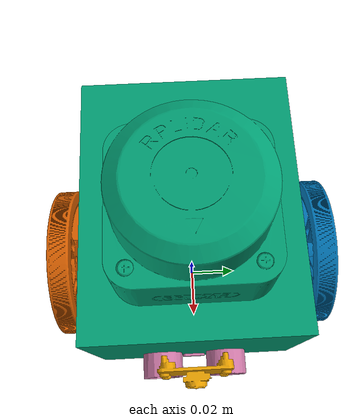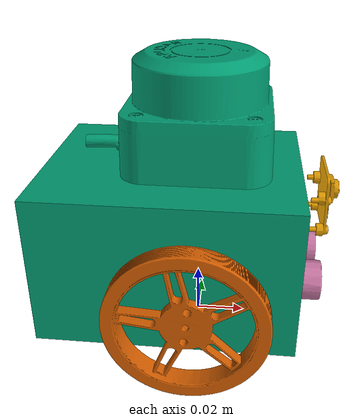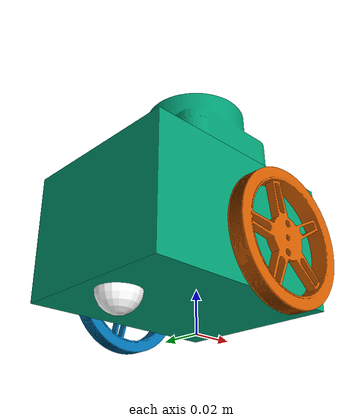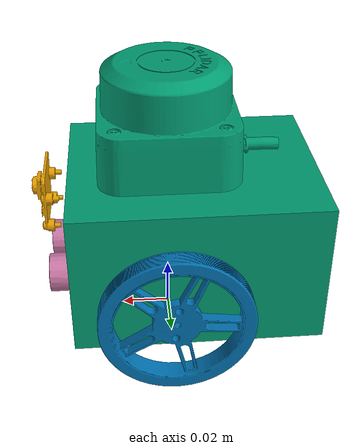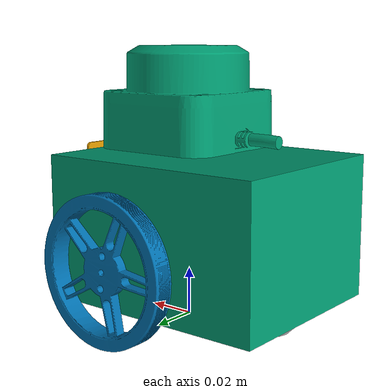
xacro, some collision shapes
<?xml version="1.0"?>
<robot name="pinky" xmlns:xacro="http://www.ros.org/wiki/xacro">

    <xacro:property name="wheel_separation" value="0.1"/>
    <xacro:property name="wheel_diameter" value="0.06"/>
    <xacro:include filename="inertial_macros.xacro"/>

    <xacro:property name="chassis_length" value="0.10"/>
    <xacro:property name="chassis_width" value="0.08"/>
    <xacro:property name="chassis_height" value="0.06"/>
    <xacro:property name="chassis_mass" value="1.0"/>
    <xacro:property name="wheel_radius" value="0.03"/>
    <xacro:property name="wheel_thickness" value="0.014"/>
    <xacro:property name="wheel_mass" value="0.05"/>
    <xacro:property name="caster_wheel_radius" value="0.01"/>
    <xacro:property name="caster_wheel_mass" value="0.7"/>

    <material name="white">
        <color rgba="1 1 1 1" />
    </material>

    <link name="base_footprint"/>

    <joint name="base_link_fixed_joint" type="fixed">
        <parent link="base_footprint"/>
        <child link="base_link"/>
        <origin xyz="0 0 ${wheel_diameter/2}" rpy="0 0 0"/>
    </joint>

	<link name="base_link"/>

     <joint name="chassis_fixed_joint" type="fixed">
        <parent link="base_link"/>
        <child link="chassis"/>
        <origin xyz="0 0 0" rpy="0 0 0"/>
    </joint>

	<link name="chassis">
		<visual>
            <origin xyz="0 0 0" rpy="0 0 0"/>
            <geometry>
                <mesh filename="package://pinky_description/meshes/visual/base_link.dae" scale="1 1 1"/>
            </geometry>
        </visual>
        <collision>
            <origin xyz="-0.01 0 0.01" rpy="0 0 0"/>
            <geometry>
                <box size="${chassis_length} ${chassis_width} ${chassis_height}"/>
            </geometry>
        </collision>
        <xacro:inertial_box mass="${chassis_mass}" x="${chassis_length}" y="${chassis_width}" z="${chassis_height}">
            <origin xyz="-0.01 0 0.01" rpy="0 0 0"/>
        </xacro:inertial_box>
	</link>

    <joint name="caster_fixed_joint" type="fixed">
        <parent link="chassis"/>
        <child link="caster"/>
        <origin xyz="-0.044 0 -0.02" rpy="0 0 0"/>
    </joint>

	<link name="caster">
      <visual>
            <origin xyz="0 0 0" rpy="0 0 0"/>
            <geometry>
                <sphere radius="${caster_wheel_radius}"/>
            </geometry>
            <material name="white"/>
        </visual>
        <collision>
            <origin xyz="0 0 0" rpy="0 0 0"/>
            <geometry>
                <sphere radius="${caster_wheel_radius}"/>
            </geometry>
        </collision>
        <xacro:inertial_sphere mass="${caster_wheel_mass}" radius="${caster_wheel_radius}">
            <origin xyz="0 0 0" rpy="0 0 0"/>
        </xacro:inertial_sphere>
    </link>

    <joint name="left_wheel_joint" type="continuous">
        <parent link="base_link"/>
        <child link="left_wheel"/>
        <origin xyz="0 ${wheel_separation/2} 0" rpy="-${pi/2} 0 0"/>
        <axis xyz="0 0 1"/>
    </joint>

    <link name="left_wheel">
        <visual>
            <origin xyz="0 0 0" rpy="0 0 0"/>
            <geometry>
                <mesh filename="package://pinky_description/meshes/visual/wheel.dae" scale="1 1 1"/>
            </geometry>
        </visual>
        <collision>
            <origin xyz="0 0 0" rpy="0 0 0"/>
            <geometry>
                <cylinder radius="${wheel_radius}" length="${wheel_thickness}"/>
            </geometry>
        </collision>
        <xacro:inertial_cylinder mass="${wheel_mass}" length="${wheel_thickness}" radius="${wheel_radius}">
            <origin xyz="0 0 0" rpy="0 0 0"/>
        </xacro:inertial_cylinder>
    </link>

    <joint name="right_wheel_joint" type="continuous">
        <parent link="base_link"/>
        <child link="right_wheel"/>
        <origin xyz="0 ${-1 * wheel_separation/2} 0" rpy="${pi/2} 0 0"/>
        <axis xyz="0 0 -1"/>
    </joint>

    <link name="right_wheel">
        <visual>
            <origin xyz="0 0 0" rpy="0 0 0"/>
            <geometry>
                <mesh filename="package://pinky_description/meshes/visual/wheel.dae" scale="1 1 1"/>
            </geometry>
        </visual>
        <collision>
            <origin xyz="0 0 0" rpy="0 0 0"/>
            <geometry>
                <cylinder radius="${wheel_radius}" length="${wheel_thickness}"/>
            </geometry>
        </collision>
        <xacro:inertial_cylinder mass="${wheel_mass}" length="${wheel_thickness}" radius="${wheel_radius}">
            <origin xyz="0 0 0" rpy="0 0 0"/>
        </xacro:inertial_cylinder>
    </link>

    <link name="ul_sensor_mount">
        <visual>
            <origin xyz="0 0 0" rpy="0 0 0"/>
            <geometry>
                <mesh filename="package://pinky_description/meshes/visual/ul_sensor.dae" scale="1 1 1"/>
            </geometry>
        </visual>
        <collision>
            <origin xyz="0 0 0" rpy="0 0 0"/>
            <geometry>
                <mesh filename="package://pinky_description/meshes/collision/ul_sensor.stl" scale="1 1 1"/>
            </geometry>
        </collision>
        <inertial>
            <origin xyz="0.005 0 0.013" rpy="0 0 0"/>
            <mass value="0.050000"/>
            <inertia ixx="0.000005" ixy="0" ixz="-0.000001" iyy="0.000004" iyz="0" izz="0.000003"/>
        </inertial>
    </link>

    <joint name="ul_sensor_mount_fixed_joint" type="fixed">
        <parent link="chassis"/>
        <child link="ul_sensor_mount"/>
        <origin xyz="0.038 -0.002 -0.0035" rpy="0 0 0"/>
    </joint>

    <link name="ul_sensor_link"/>

    <joint name="ul_sensor_link_fixed_joint" type="fixed">
        <parent link="ul_sensor_mount"/>
        <child link="ul_sensor_link"/>
        <origin xyz="0.01 0 0" rpy="0 0 0"/>
    </joint>

    <link name="front_camera_mount">
        <visual>
            <origin xyz="0 0 0" rpy="0 0 0"/>
            <geometry>
                <mesh filename="package://pinky_description/meshes/visual/camera.dae" scale="1 1 1"/>
            </geometry>
        </visual>
        <collision>
            <origin xyz="0 0 0" rpy="0 0 0"/>
            <geometry>
                <mesh filename="package://pinky_description/meshes/collision/camera.stl" scale="1 1 1"/>
            </geometry>
        </collision>
        <inertial>
            <origin xyz="0.005 0 0.013" rpy="0 0 0"/>
            <mass value="0.050000"/>
            <inertia ixx="0.000005" ixy="0" ixz="-0.000001" iyy="0.000004" iyz="0" izz="0.000003"/>
        </inertial>
    </link>

    <joint name="front_camera_mount_fixed_joint" type="fixed">
        <parent link="chassis"/>
        <child link="front_camera_mount"/>
        <origin xyz="0.05 -0.001 0.028" rpy="0 0 0"/>
    </joint>

    <link name="camera_link"/>

    <joint name="camera_link_fixed_joint" type="fixed">
        <parent link="front_camera_mount"/>
        <child link="camera_link"/>
        <origin xyz="0.001 0 0.003" rpy="-${pi/2} 0 -${pi/2}"/>
    </joint>

    <link name="lidar_lidar_mount">
        <visual>
            <origin xyz="0 0 0" rpy="0 0 0"/>
            <geometry>
                <mesh filename="package://pinky_description/meshes/visual/lidar.dae" scale="1 1 1"/>
            </geometry>
        </visual>
        <collision>
            <origin xyz="0 0 0" rpy="0 0 0"/>
            <geometry>
                <mesh filename="package://pinky_description/meshes/collision/lidar.stl" scale="1 1 1"/>
            </geometry>
        </collision>
        <inertial>
            <origin xyz="0.007 0 0.025" rpy="0 0 0"/>
            <mass value="0.110"/>
            <inertia ixx="0.000058" ixy="0" ixz="0.000005" iyy="0.000099" iyz="0" izz="0.000103"/>
        </inertial>
    </link>

    <joint name="lidar_mount_fixed_joint" type="fixed">
        <parent link="chassis"/>
        <child link="lidar_lidar_mount"/>
        <origin xyz="0 0 0.042" rpy="0 0 0"/>
    </joint>

    <link name="laser_link"/>

    <joint name="laser_link_fixed_joint" type="fixed">
        <parent link="lidar_lidar_mount"/>
        <child link="laser_link"/>
        <origin xyz="0.0 0 0.03" rpy="0 0 ${pi}"/>
    </joint>

    <link name="imu_link">
        <sensor name="imu_sensor" type="imu">
            <always_on>1</always_on>
            <update_rate>1</update_rate>
            <visualize>true</visualize>
            <topic>imu</topic>
        </sensor>
    </link>

    <joint name="imu_link_joint" type="fixed">
        <parent link="chassis"/>
        <child link="imu_link"/>
        <origin xyz="0 0 0.03" rpy="0 0 0"/>
    </joint>

</robot>
